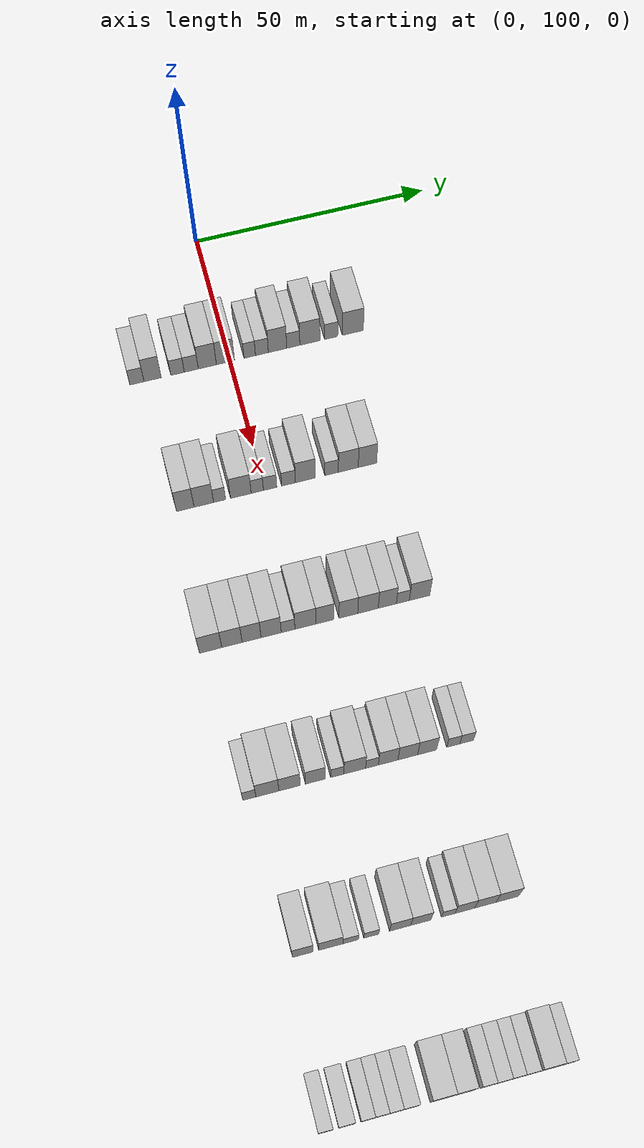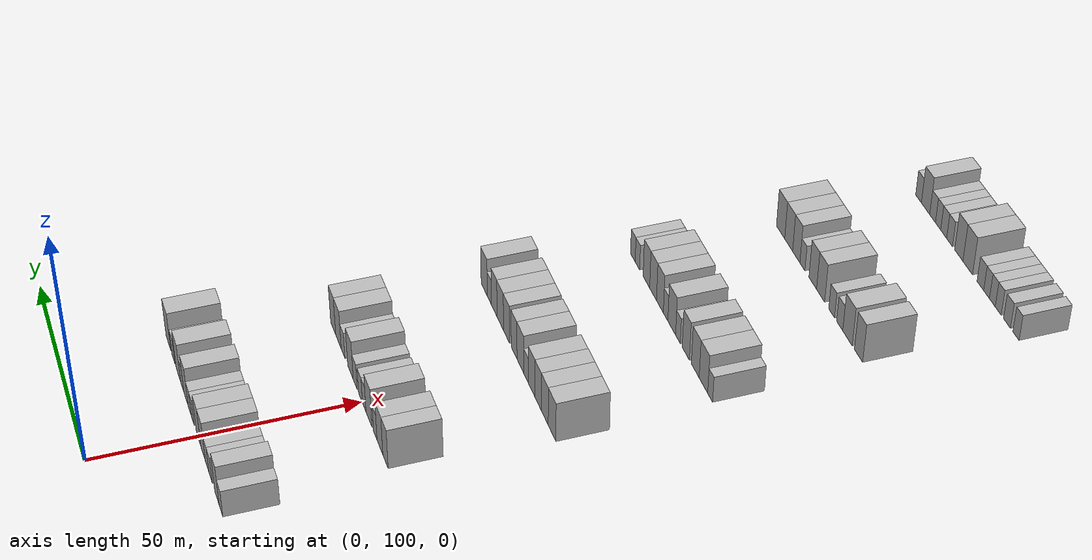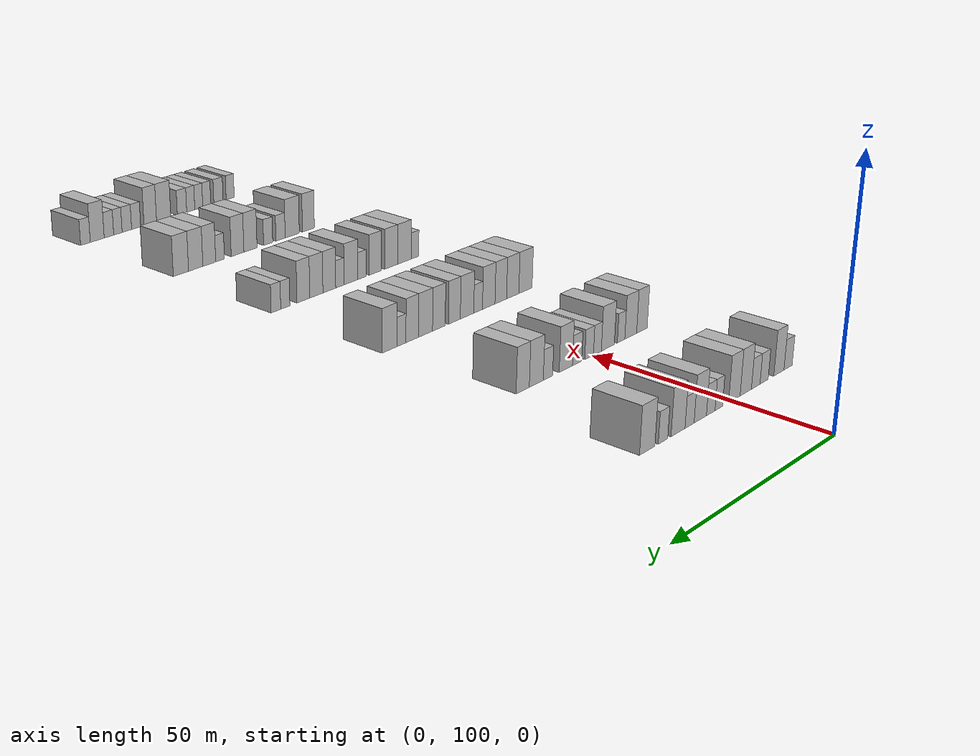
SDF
<sdf version="1.6">
 <world name="default">
  <model name="building_132">
   <static>1</static>
   <pose>25.0000 80.4312 0 0.000000 0.000000 0.000000</pose>
   <link name="link">
    <pose>0 0 3.00 0 0 0</pose>
    <collision name="collision"><geometry><box><size>10.0000 2.9706 6.0000</size></box></geometry></collision>
    <visual name="visual">
     <cast_shadows>0</cast_shadows>
     <geometry><box><size>10.0000 2.9706 6.0000</size></box></geometry>
     <material>
      <script>
       <uri>model://HANNAS_wall/materials/scripts</uri>
       <uri>model://HANNAS_wall/materials/textures</uri>
       <name>vrc/HANNAS_wall</name>
      </script>
     </material>
    </visual>
   </link>
  </model>
  <model name="building_133">
   <static>1</static>
   <pose>25.0000 83.7297 0 0.000000 0.000000 0.000000</pose>
   <link name="link">
    <pose>0 0 4.50 0 0 0</pose>
    <collision name="collision"><geometry><box><size>10.0000 3.6263 9.0000</size></box></geometry></collision>
    <visual name="visual">
     <cast_shadows>0</cast_shadows>
     <geometry><box><size>10.0000 3.6263 9.0000</size></box></geometry>
     <material>
      <script>
       <uri>model://HANNAS_wall/materials/scripts</uri>
       <uri>model://HANNAS_wall/materials/textures</uri>
       <name>vrc/HANNAS_wall</name>
      </script>
     </material>
    </visual>
   </link>
  </model>
  <model name="building_134">
   <static>1</static>
   <pose>25.0000 88.9687 0 0.000000 0.000000 0.000000</pose>
   <link name="link">
    <pose>0 0 3.00 0 0 0</pose>
    <collision name="collision"><geometry><box><size>10.0000 2.8517 6.0000</size></box></geometry></collision>
    <visual name="visual">
     <cast_shadows>0</cast_shadows>
     <geometry><box><size>10.0000 2.8517 6.0000</size></box></geometry>
     <material>
      <script>
       <uri>model://HANNAS_wall/materials/scripts</uri>
       <uri>model://HANNAS_wall/materials/textures</uri>
       <name>vrc/HANNAS_wall</name>
      </script>
     </material>
    </visual>
   </link>
  </model>
  <model name="building_135">
   <static>1</static>
   <pose>25.0000 91.8757 0 0.000000 0.000000 0.000000</pose>
   <link name="link">
    <pose>0 0 3.00 0 0 0</pose>
    <collision name="collision"><geometry><box><size>10.0000 2.9624 6.0000</size></box></geometry></collision>
    <visual name="visual">
     <cast_shadows>0</cast_shadows>
     <geometry><box><size>10.0000 2.9624 6.0000</size></box></geometry>
     <material>
      <script>
       <uri>model://HANNAS_wall/materials/scripts</uri>
       <uri>model://HANNAS_wall/materials/textures</uri>
       <name>vrc/HANNAS_wall</name>
      </script>
     </material>
    </visual>
   </link>
  </model>
  <model name="building_136">
   <static>1</static>
   <pose>25.0000 95.2768 0 0.000000 0.000000 0.000000</pose>
   <link name="link">
    <pose>0 0 4.50 0 0 0</pose>
    <collision name="collision"><geometry><box><size>10.0000 3.8398 9.0000</size></box></geometry></collision>
    <visual name="visual">
     <cast_shadows>0</cast_shadows>
     <geometry><box><size>10.0000 3.8398 9.0000</size></box></geometry>
     <material>
      <script>
       <uri>model://HANNAS_wall/materials/scripts</uri>
       <uri>model://HANNAS_wall/materials/textures</uri>
       <name>vrc/HANNAS_wall</name>
      </script>
     </material>
    </visual>
   </link>
  </model>
  <model name="building_137">
   <static>1</static>
   <pose>25.0000 99.1187 0 0.000000 0.000000 0.000000</pose>
   <link name="link">
    <pose>0 0 4.50 0 0 0</pose>
    <collision name="collision"><geometry><box><size>10.0000 3.8441 9.0000</size></box></geometry></collision>
    <visual name="visual">
     <cast_shadows>0</cast_shadows>
     <geometry><box><size>10.0000 3.8441 9.0000</size></box></geometry>
     <material>
      <script>
       <uri>model://HANNAS_wall/materials/scripts</uri>
       <uri>model://HANNAS_wall/materials/textures</uri>
       <name>vrc/HANNAS_wall</name>
      </script>
     </material>
    </visual>
   </link>
  </model>
  <model name="building_138">
   <static>1</static>
   <pose>25.0000 104.2599 0 0.000000 0.000000 0.000000</pose>
   <link name="link">
    <pose>0 0 3.00 0 0 0</pose>
    <collision name="collision"><geometry><box><size>10.0000 2.4383 6.0000</size></box></geometry></collision>
    <visual name="visual">
     <cast_shadows>0</cast_shadows>
     <geometry><box><size>10.0000 2.4383 6.0000</size></box></geometry>
     <material>
      <script>
       <uri>model://HANNAS_wall/materials/scripts</uri>
       <uri>model://HANNAS_wall/materials/textures</uri>
       <name>vrc/HANNAS_wall</name>
      </script>
     </material>
    </visual>
   </link>
  </model>
  <model name="building_139">
   <static>1</static>
   <pose>25.0000 106.8576 0 0.000000 0.000000 0.000000</pose>
   <link name="link">
    <pose>0 0 3.00 0 0 0</pose>
    <collision name="collision"><geometry><box><size>10.0000 2.7573 6.0000</size></box></geometry></collision>
    <visual name="visual">
     <cast_shadows>0</cast_shadows>
     <geometry><box><size>10.0000 2.7573 6.0000</size></box></geometry>
     <material>
      <script>
       <uri>model://HANNAS_wall/materials/scripts</uri>
       <uri>model://HANNAS_wall/materials/textures</uri>
       <name>vrc/HANNAS_wall</name>
      </script>
     </material>
    </visual>
   </link>
  </model>
  <model name="building_140">
   <static>1</static>
   <pose>25.0000 110.1874 0 0.000000 0.000000 0.000000</pose>
   <link name="link">
    <pose>0 0 4.50 0 0 0</pose>
    <collision name="collision"><geometry><box><size>10.0000 3.9023 9.0000</size></box></geometry></collision>
    <visual name="visual">
     <cast_shadows>0</cast_shadows>
     <geometry><box><size>10.0000 3.9023 9.0000</size></box></geometry>
     <material>
      <script>
       <uri>model://HANNAS_wall/materials/scripts</uri>
       <uri>model://HANNAS_wall/materials/textures</uri>
       <name>vrc/HANNAS_wall</name>
      </script>
     </material>
    </visual>
   </link>
  </model>
  <model name="building_141">
   <static>1</static>
   <pose>25.0000 113.5508 0 0.000000 0.000000 0.000000</pose>
   <link name="link">
    <pose>0 0 3.00 0 0 0</pose>
    <collision name="collision"><geometry><box><size>10.0000 2.8245 6.0000</size></box></geometry></collision>
    <visual name="visual">
     <cast_shadows>0</cast_shadows>
     <geometry><box><size>10.0000 2.8245 6.0000</size></box></geometry>
     <material>
      <script>
       <uri>model://HANNAS_wall/materials/scripts</uri>
       <uri>model://HANNAS_wall/materials/textures</uri>
       <name>vrc/HANNAS_wall</name>
      </script>
     </material>
    </visual>
   </link>
  </model>
  <model name="building_142">
   <static>1</static>
   <pose>25.0000 117.1089 0 0.000000 0.000000 0.000000</pose>
   <link name="link">
    <pose>0 0 4.50 0 0 0</pose>
    <collision name="collision"><geometry><box><size>10.0000 4.2918 9.0000</size></box></geometry></collision>
    <visual name="visual">
     <cast_shadows>0</cast_shadows>
     <geometry><box><size>10.0000 4.2918 9.0000</size></box></geometry>
     <material>
      <script>
       <uri>model://HANNAS_wall/materials/scripts</uri>
       <uri>model://HANNAS_wall/materials/textures</uri>
       <name>vrc/HANNAS_wall</name>
      </script>
     </material>
    </visual>
   </link>
  </model>
  <model name="building_143">
   <static>1</static>
   <pose>25.0000 121.6688 0 0.000000 0.000000 0.000000</pose>
   <link name="link">
    <pose>0 0 3.00 0 0 0</pose>
    <collision name="collision"><geometry><box><size>10.0000 2.8280 6.0000</size></box></geometry></collision>
    <visual name="visual">
     <cast_shadows>0</cast_shadows>
     <geometry><box><size>10.0000 2.8280 6.0000</size></box></geometry>
     <material>
      <script>
       <uri>model://HANNAS_wall/materials/scripts</uri>
       <uri>model://HANNAS_wall/materials/textures</uri>
       <name>vrc/HANNAS_wall</name>
      </script>
     </material>
    </visual>
   </link>
  </model>
  <model name="building_144">
   <static>1</static>
   <pose>25.0000 126.3300 0 0.000000 0.000000 0.000000</pose>
   <link name="link">
    <pose>0 0 4.50 0 0 0</pose>
    <collision name="collision"><geometry><box><size>10.0000 4.4942 9.0000</size></box></geometry></collision>
    <visual name="visual">
     <cast_shadows>0</cast_shadows>
     <geometry><box><size>10.0000 4.4942 9.0000</size></box></geometry>
     <material>
      <script>
       <uri>model://HANNAS_wall/materials/scripts</uri>
       <uri>model://HANNAS_wall/materials/textures</uri>
       <name>vrc/HANNAS_wall</name>
      </script>
     </material>
    </visual>
   </link>
  </model>
  <model name="building_361">
   <static>1</static>
   <pose>55.0000 83.6692 0 0.000000 0.000000 0.000000</pose>
   <link name="link">
    <pose>0 0 4.50 0 0 0</pose>
    <collision name="collision"><geometry><box><size>10.0000 3.6017 9.0000</size></box></geometry></collision>
    <visual name="visual">
     <cast_shadows>0</cast_shadows>
     <geometry><box><size>10.0000 3.6017 9.0000</size></box></geometry>
     <material>
      <script>
       <uri>model://HANNAS_wall/materials/scripts</uri>
       <uri>model://HANNAS_wall/materials/textures</uri>
       <name>vrc/HANNAS_wall</name>
      </script>
     </material>
    </visual>
   </link>
  </model>
  <model name="building_362">
   <static>1</static>
   <pose>55.0000 87.4626 0 0.000000 0.000000 0.000000</pose>
   <link name="link">
    <pose>0 0 4.50 0 0 0</pose>
    <collision name="collision"><geometry><box><size>10.0000 3.9851 9.0000</size></box></geometry></collision>
    <visual name="visual">
     <cast_shadows>0</cast_shadows>
     <geometry><box><size>10.0000 3.9851 9.0000</size></box></geometry>
     <material>
      <script>
       <uri>model://HANNAS_wall/materials/scripts</uri>
       <uri>model://HANNAS_wall/materials/textures</uri>
       <name>vrc/HANNAS_wall</name>
      </script>
     </material>
    </visual>
   </link>
  </model>
  <model name="building_363">
   <static>1</static>
   <pose>55.0000 90.6840 0 0.000000 0.000000 0.000000</pose>
   <link name="link">
    <pose>0 0 3.00 0 0 0</pose>
    <collision name="collision"><geometry><box><size>10.0000 2.4578 6.0000</size></box></geometry></collision>
    <visual name="visual">
     <cast_shadows>0</cast_shadows>
     <geometry><box><size>10.0000 2.4578 6.0000</size></box></geometry>
     <material>
      <script>
       <uri>model://HANNAS_wall/materials/scripts</uri>
       <uri>model://HANNAS_wall/materials/textures</uri>
       <name>vrc/HANNAS_wall</name>
      </script>
     </material>
    </visual>
   </link>
  </model>
  <model name="building_364">
   <static>1</static>
   <pose>55.0000 95.0373 0 0.000000 0.000000 0.000000</pose>
   <link name="link">
    <pose>0 0 4.50 0 0 0</pose>
    <collision name="collision"><geometry><box><size>10.0000 4.2488 9.0000</size></box></geometry></collision>
    <visual name="visual">
     <cast_shadows>0</cast_shadows>
     <geometry><box><size>10.0000 4.2488 9.0000</size></box></geometry>
     <material>
      <script>
       <uri>model://HANNAS_wall/materials/scripts</uri>
       <uri>model://HANNAS_wall/materials/textures</uri>
       <name>vrc/HANNAS_wall</name>
      </script>
     </material>
    </visual>
   </link>
  </model>
  <model name="building_365">
   <static>1</static>
   <pose>55.0000 98.4216 0 0.000000 0.000000 0.000000</pose>
   <link name="link">
    <pose>0 0 3.00 0 0 0</pose>
    <collision name="collision"><geometry><box><size>10.0000 2.5198 6.0000</size></box></geometry></collision>
    <visual name="visual">
     <cast_shadows>0</cast_shadows>
     <geometry><box><size>10.0000 2.5198 6.0000</size></box></geometry>
     <material>
      <script>
       <uri>model://HANNAS_wall/materials/scripts</uri>
       <uri>model://HANNAS_wall/materials/textures</uri>
       <name>vrc/HANNAS_wall</name>
      </script>
     </material>
    </visual>
   </link>
  </model>
  <model name="building_366">
   <static>1</static>
   <pose>55.0000 101.0562 0 0.000000 0.000000 0.000000</pose>
   <link name="link">
    <pose>0 0 3.00 0 0 0</pose>
    <collision name="collision"><geometry><box><size>10.0000 2.7495 6.0000</size></box></geometry></collision>
    <visual name="visual">
     <cast_shadows>0</cast_shadows>
     <geometry><box><size>10.0000 2.7495 6.0000</size></box></geometry>
     <material>
      <script>
       <uri>model://HANNAS_wall/materials/scripts</uri>
       <uri>model://HANNAS_wall/materials/textures</uri>
       <name>vrc/HANNAS_wall</name>
      </script>
     </material>
    </visual>
   </link>
  </model>
  <model name="building_367">
   <static>1</static>
   <pose>55.0000 104.8557 0 0.000000 0.000000 0.000000</pose>
   <link name="link">
    <pose>0 0 3.00 0 0 0</pose>
    <collision name="collision"><geometry><box><size>10.0000 2.8495 6.0000</size></box></geometry></collision>
    <visual name="visual">
     <cast_shadows>0</cast_shadows>
     <geometry><box><size>10.0000 2.8495 6.0000</size></box></geometry>
     <material>
      <script>
       <uri>model://HANNAS_wall/materials/scripts</uri>
       <uri>model://HANNAS_wall/materials/textures</uri>
       <name>vrc/HANNAS_wall</name>
      </script>
     </material>
    </visual>
   </link>
  </model>
  <model name="building_368">
   <static>1</static>
   <pose>55.0000 108.3212 0 0.000000 0.000000 0.000000</pose>
   <link name="link">
    <pose>0 0 4.50 0 0 0</pose>
    <collision name="collision"><geometry><box><size>10.0000 4.0814 9.0000</size></box></geometry></collision>
    <visual name="visual">
     <cast_shadows>0</cast_shadows>
     <geometry><box><size>10.0000 4.0814 9.0000</size></box></geometry>
     <material>
      <script>
       <uri>model://HANNAS_wall/materials/scripts</uri>
       <uri>model://HANNAS_wall/materials/textures</uri>
       <name>vrc/HANNAS_wall</name>
      </script>
     </material>
    </visual>
   </link>
  </model>
  <model name="building_369">
   <static>1</static>
   <pose>55.0000 113.7591 0 0.000000 0.000000 0.000000</pose>
   <link name="link">
    <pose>0 0 3.00 0 0 0</pose>
    <collision name="collision"><geometry><box><size>10.0000 2.7943 6.0000</size></box></geometry></collision>
    <visual name="visual">
     <cast_shadows>0</cast_shadows>
     <geometry><box><size>10.0000 2.7943 6.0000</size></box></geometry>
     <material>
      <script>
       <uri>model://HANNAS_wall/materials/scripts</uri>
       <uri>model://HANNAS_wall/materials/textures</uri>
       <name>vrc/HANNAS_wall</name>
      </script>
     </material>
    </visual>
   </link>
  </model>
  <model name="building_370">
   <static>1</static>
   <pose>55.0000 117.2240 0 0.000000 0.000000 0.000000</pose>
   <link name="link">
    <pose>0 0 4.50 0 0 0</pose>
    <collision name="collision"><geometry><box><size>10.0000 4.1356 9.0000</size></box></geometry></collision>
    <visual name="visual">
     <cast_shadows>0</cast_shadows>
     <geometry><box><size>10.0000 4.1356 9.0000</size></box></geometry>
     <material>
      <script>
       <uri>model://HANNAS_wall/materials/scripts</uri>
       <uri>model://HANNAS_wall/materials/textures</uri>
       <name>vrc/HANNAS_wall</name>
      </script>
     </material>
    </visual>
   </link>
  </model>
  <model name="building_371">
   <static>1</static>
   <pose>55.0000 121.1991 0 0.000000 0.000000 0.000000</pose>
   <link name="link">
    <pose>0 0 4.50 0 0 0</pose>
    <collision name="collision"><geometry><box><size>10.0000 3.8147 9.0000</size></box></geometry></collision>
    <visual name="visual">
     <cast_shadows>0</cast_shadows>
     <geometry><box><size>10.0000 3.8147 9.0000</size></box></geometry>
     <material>
      <script>
       <uri>model://HANNAS_wall/materials/scripts</uri>
       <uri>model://HANNAS_wall/materials/textures</uri>
       <name>vrc/HANNAS_wall</name>
      </script>
     </material>
    </visual>
   </link>
  </model>
  <model name="building_588">
   <static>1</static>
   <pose>85.0000 81.7219 0 0.000000 0.000000 0.000000</pose>
   <link name="link">
    <pose>0 0 4.50 0 0 0</pose>
    <collision name="collision"><geometry><box><size>10.0000 4.4273 9.0000</size></box></geometry></collision>
    <visual name="visual">
     <cast_shadows>0</cast_shadows>
     <geometry><box><size>10.0000 4.4273 9.0000</size></box></geometry>
     <material>
      <script>
       <uri>model://HANNAS_wall/materials/scripts</uri>
       <uri>model://HANNAS_wall/materials/textures</uri>
       <name>vrc/HANNAS_wall</name>
      </script>
     </material>
    </visual>
   </link>
  </model>
  <model name="building_589">
   <static>1</static>
   <pose>85.0000 85.9548 0 0.000000 0.000000 0.000000</pose>
   <link name="link">
    <pose>0 0 4.50 0 0 0</pose>
    <collision name="collision"><geometry><box><size>10.0000 4.0385 9.0000</size></box></geometry></collision>
    <visual name="visual">
     <cast_shadows>0</cast_shadows>
     <geometry><box><size>10.0000 4.0385 9.0000</size></box></geometry>
     <material>
      <script>
       <uri>model://HANNAS_wall/materials/scripts</uri>
       <uri>model://HANNAS_wall/materials/textures</uri>
       <name>vrc/HANNAS_wall</name>
      </script>
     </material>
    </visual>
   </link>
  </model>
  <model name="building_590">
   <static>1</static>
   <pose>85.0000 89.8477 0 0.000000 0.000000 0.000000</pose>
   <link name="link">
    <pose>0 0 4.50 0 0 0</pose>
    <collision name="collision"><geometry><box><size>10.0000 3.7474 9.0000</size></box></geometry></collision>
    <visual name="visual">
     <cast_shadows>0</cast_shadows>
     <geometry><box><size>10.0000 3.7474 9.0000</size></box></geometry>
     <material>
      <script>
       <uri>model://HANNAS_wall/materials/scripts</uri>
       <uri>model://HANNAS_wall/materials/textures</uri>
       <name>vrc/HANNAS_wall</name>
      </script>
     </material>
    </visual>
   </link>
  </model>
  <model name="building_591">
   <static>1</static>
   <pose>85.0000 93.7187 0 0.000000 0.000000 0.000000</pose>
   <link name="link">
    <pose>0 0 4.50 0 0 0</pose>
    <collision name="collision"><geometry><box><size>10.0000 3.9947 9.0000</size></box></geometry></collision>
    <visual name="visual">
     <cast_shadows>0</cast_shadows>
     <geometry><box><size>10.0000 3.9947 9.0000</size></box></geometry>
     <material>
      <script>
       <uri>model://HANNAS_wall/materials/scripts</uri>
       <uri>model://HANNAS_wall/materials/textures</uri>
       <name>vrc/HANNAS_wall</name>
      </script>
     </material>
    </visual>
   </link>
  </model>
  <model name="building_592">
   <static>1</static>
   <pose>85.0000 97.0842 0 0.000000 0.000000 0.000000</pose>
   <link name="link">
    <pose>0 0 3.00 0 0 0</pose>
    <collision name="collision"><geometry><box><size>10.0000 2.7363 6.0000</size></box></geometry></collision>
    <visual name="visual">
     <cast_shadows>0</cast_shadows>
     <geometry><box><size>10.0000 2.7363 6.0000</size></box></geometry>
     <material>
      <script>
       <uri>model://HANNAS_wall/materials/scripts</uri>
       <uri>model://HANNAS_wall/materials/textures</uri>
       <name>vrc/HANNAS_wall</name>
      </script>
     </material>
    </visual>
   </link>
  </model>
  <model name="building_593">
   <static>1</static>
   <pose>85.0000 100.5328 0 0.000000 0.000000 0.000000</pose>
   <link name="link">
    <pose>0 0 4.50 0 0 0</pose>
    <collision name="collision"><geometry><box><size>10.0000 4.1608 9.0000</size></box></geometry></collision>
    <visual name="visual">
     <cast_shadows>0</cast_shadows>
     <geometry><box><size>10.0000 4.1608 9.0000</size></box></geometry>
     <material>
      <script>
       <uri>model://HANNAS_wall/materials/scripts</uri>
       <uri>model://HANNAS_wall/materials/textures</uri>
       <name>vrc/HANNAS_wall</name>
      </script>
     </material>
    </visual>
   </link>
  </model>
  <model name="building_594">
   <static>1</static>
   <pose>85.0000 104.4222 0 0.000000 0.000000 0.000000</pose>
   <link name="link">
    <pose>0 0 4.50 0 0 0</pose>
    <collision name="collision"><geometry><box><size>10.0000 3.6181 9.0000</size></box></geometry></collision>
    <visual name="visual">
     <cast_shadows>0</cast_shadows>
     <geometry><box><size>10.0000 3.6181 9.0000</size></box></geometry>
     <material>
      <script>
       <uri>model://HANNAS_wall/materials/scripts</uri>
       <uri>model://HANNAS_wall/materials/textures</uri>
       <name>vrc/HANNAS_wall</name>
      </script>
     </material>
    </visual>
   </link>
  </model>
  <model name="building_595">
   <static>1</static>
   <pose>85.0000 109.1211 0 0.000000 0.000000 0.000000</pose>
   <link name="link">
    <pose>0 0 4.50 0 0 0</pose>
    <collision name="collision"><geometry><box><size>10.0000 3.7796 9.0000</size></box></geometry></collision>
    <visual name="visual">
     <cast_shadows>0</cast_shadows>
     <geometry><box><size>10.0000 3.7796 9.0000</size></box></geometry>
     <material>
      <script>
       <uri>model://HANNAS_wall/materials/scripts</uri>
       <uri>model://HANNAS_wall/materials/textures</uri>
       <name>vrc/HANNAS_wall</name>
      </script>
     </material>
    </visual>
   </link>
  </model>
  <model name="building_596">
   <static>1</static>
   <pose>85.0000 113.0689 0 0.000000 0.000000 0.000000</pose>
   <link name="link">
    <pose>0 0 4.50 0 0 0</pose>
    <collision name="collision"><geometry><box><size>10.0000 4.1160 9.0000</size></box></geometry></collision>
    <visual name="visual">
     <cast_shadows>0</cast_shadows>
     <geometry><box><size>10.0000 4.1160 9.0000</size></box></geometry>
     <material>
      <script>
       <uri>model://HANNAS_wall/materials/scripts</uri>
       <uri>model://HANNAS_wall/materials/textures</uri>
       <name>vrc/HANNAS_wall</name>
      </script>
     </material>
    </visual>
   </link>
  </model>
  <model name="building_597">
   <static>1</static>
   <pose>85.0000 116.9531 0 0.000000 0.000000 0.000000</pose>
   <link name="link">
    <pose>0 0 4.50 0 0 0</pose>
    <collision name="collision"><geometry><box><size>10.0000 3.6525 9.0000</size></box></geometry></collision>
    <visual name="visual">
     <cast_shadows>0</cast_shadows>
     <geometry><box><size>10.0000 3.6525 9.0000</size></box></geometry>
     <material>
      <script>
       <uri>model://HANNAS_wall/materials/scripts</uri>
       <uri>model://HANNAS_wall/materials/textures</uri>
       <name>vrc/HANNAS_wall</name>
      </script>
     </material>
    </visual>
   </link>
  </model>
  <model name="building_598">
   <static>1</static>
   <pose>85.0000 120.0912 0 0.000000 0.000000 0.000000</pose>
   <link name="link">
    <pose>0 0 3.00 0 0 0</pose>
    <collision name="collision"><geometry><box><size>10.0000 2.6236 6.0000</size></box></geometry></collision>
    <visual name="visual">
     <cast_shadows>0</cast_shadows>
     <geometry><box><size>10.0000 2.6236 6.0000</size></box></geometry>
     <material>
      <script>
       <uri>model://HANNAS_wall/materials/scripts</uri>
       <uri>model://HANNAS_wall/materials/textures</uri>
       <name>vrc/HANNAS_wall</name>
      </script>
     </material>
    </visual>
   </link>
  </model>
  <model name="building_599">
   <static>1</static>
   <pose>85.0000 123.4636 0 0.000000 0.000000 0.000000</pose>
   <link name="link">
    <pose>0 0 4.50 0 0 0</pose>
    <collision name="collision"><geometry><box><size>10.0000 4.1213 9.0000</size></box></geometry></collision>
    <visual name="visual">
     <cast_shadows>0</cast_shadows>
     <geometry><box><size>10.0000 4.1213 9.0000</size></box></geometry>
     <material>
      <script>
       <uri>model://HANNAS_wall/materials/scripts</uri>
       <uri>model://HANNAS_wall/materials/textures</uri>
       <name>vrc/HANNAS_wall</name>
      </script>
     </material>
    </visual>
   </link>
  </model>
  <model name="building_821">
   <static>1</static>
   <pose>115.0000 81.9940 0 0.000000 0.000000 0.000000</pose>
   <link name="link">
    <pose>0 0 3.00 0 0 0</pose>
    <collision name="collision"><geometry><box><size>10.0000 2.5083 6.0000</size></box></geometry></collision>
    <visual name="visual">
     <cast_shadows>0</cast_shadows>
     <geometry><box><size>10.0000 2.5083 6.0000</size></box></geometry>
     <material>
      <script>
       <uri>model://HANNAS_wall/materials/scripts</uri>
       <uri>model://HANNAS_wall/materials/textures</uri>
       <name>vrc/HANNAS_wall</name>
      </script>
     </material>
    </visual>
   </link>
  </model>
  <model name="building_822">
   <static>1</static>
   <pose>115.0000 85.4517 0 0.000000 0.000000 0.000000</pose>
   <link name="link">
    <pose>0 0 4.50 0 0 0</pose>
    <collision name="collision"><geometry><box><size>10.0000 4.4071 9.0000</size></box></geometry></collision>
    <visual name="visual">
     <cast_shadows>0</cast_shadows>
     <geometry><box><size>10.0000 4.4071 9.0000</size></box></geometry>
     <material>
      <script>
       <uri>model://HANNAS_wall/materials/scripts</uri>
       <uri>model://HANNAS_wall/materials/textures</uri>
       <name>vrc/HANNAS_wall</name>
      </script>
     </material>
    </visual>
   </link>
  </model>
  <model name="building_823">
   <static>1</static>
   <pose>115.0000 89.6960 0 0.000000 0.000000 0.000000</pose>
   <link name="link">
    <pose>0 0 4.50 0 0 0</pose>
    <collision name="collision"><geometry><box><size>10.0000 4.0816 9.0000</size></box></geometry></collision>
    <visual name="visual">
     <cast_shadows>0</cast_shadows>
     <geometry><box><size>10.0000 4.0816 9.0000</size></box></geometry>
     <material>
      <script>
       <uri>model://HANNAS_wall/materials/scripts</uri>
       <uri>model://HANNAS_wall/materials/textures</uri>
       <name>vrc/HANNAS_wall</name>
      </script>
     </material>
    </visual>
   </link>
  </model>
  <model name="building_824">
   <static>1</static>
   <pose>115.0000 94.6588 0 0.000000 0.000000 0.000000</pose>
   <link name="link">
    <pose>0 0 4.50 0 0 0</pose>
    <collision name="collision"><geometry><box><size>10.0000 3.8440 9.0000</size></box></geometry></collision>
    <visual name="visual">
     <cast_shadows>0</cast_shadows>
     <geometry><box><size>10.0000 3.8440 9.0000</size></box></geometry>
     <material>
      <script>
       <uri>model://HANNAS_wall/materials/scripts</uri>
       <uri>model://HANNAS_wall/materials/textures</uri>
       <name>vrc/HANNAS_wall</name>
      </script>
     </material>
    </visual>
   </link>
  </model>
  <model name="building_825">
   <static>1</static>
   <pose>115.0000 98.8537 0 0.000000 0.000000 0.000000</pose>
   <link name="link">
    <pose>0 0 3.00 0 0 0</pose>
    <collision name="collision"><geometry><box><size>10.0000 2.5457 6.0000</size></box></geometry></collision>
    <visual name="visual">
     <cast_shadows>0</cast_shadows>
     <geometry><box><size>10.0000 2.5457 6.0000</size></box></geometry>
     <material>
      <script>
       <uri>model://HANNAS_wall/materials/scripts</uri>
       <uri>model://HANNAS_wall/materials/textures</uri>
       <name>vrc/HANNAS_wall</name>
      </script>
     </material>
    </visual>
   </link>
  </model>
  <model name="building_826">
   <static>1</static>
   <pose>115.0000 102.2245 0 0.000000 0.000000 0.000000</pose>
   <link name="link">
    <pose>0 0 4.50 0 0 0</pose>
    <collision name="collision"><geometry><box><size>10.0000 4.1959 9.0000</size></box></geometry></collision>
    <visual name="visual">
     <cast_shadows>0</cast_shadows>
     <geometry><box><size>10.0000 4.1959 9.0000</size></box></geometry>
     <material>
      <script>
       <uri>model://HANNAS_wall/materials/scripts</uri>
       <uri>model://HANNAS_wall/materials/textures</uri>
       <name>vrc/HANNAS_wall</name>
      </script>
     </material>
    </visual>
   </link>
  </model>
  <model name="building_827">
   <static>1</static>
   <pose>115.0000 105.5621 0 0.000000 0.000000 0.000000</pose>
   <link name="link">
    <pose>0 0 3.00 0 0 0</pose>
    <collision name="collision"><geometry><box><size>10.0000 2.4794 6.0000</size></box></geometry></collision>
    <visual name="visual">
     <cast_shadows>0</cast_shadows>
     <geometry><box><size>10.0000 2.4794 6.0000</size></box></geometry>
     <material>
      <script>
       <uri>model://HANNAS_wall/materials/scripts</uri>
       <uri>model://HANNAS_wall/materials/textures</uri>
       <name>vrc/HANNAS_wall</name>
      </script>
     </material>
    </visual>
   </link>
  </model>
  <model name="building_828">
   <static>1</static>
   <pose>115.0000 108.7014 0 0.000000 0.000000 0.000000</pose>
   <link name="link">
    <pose>0 0 4.50 0 0 0</pose>
    <collision name="collision"><geometry><box><size>10.0000 3.7992 9.0000</size></box></geometry></collision>
    <visual name="visual">
     <cast_shadows>0</cast_shadows>
     <geometry><box><size>10.0000 3.7992 9.0000</size></box></geometry>
     <material>
      <script>
       <uri>model://HANNAS_wall/materials/scripts</uri>
       <uri>model://HANNAS_wall/materials/textures</uri>
       <name>vrc/HANNAS_wall</name>
      </script>
     </material>
    </visual>
   </link>
  </model>
  <model name="building_829">
   <static>1</static>
   <pose>115.0000 112.5204 0 0.000000 0.000000 0.000000</pose>
   <link name="link">
    <pose>0 0 4.50 0 0 0</pose>
    <collision name="collision"><geometry><box><size>10.0000 3.8387 9.0000</size></box></geometry></collision>
    <visual name="visual">
     <cast_shadows>0</cast_shadows>
     <geometry><box><size>10.0000 3.8387 9.0000</size></box></geometry>
     <material>
      <script>
       <uri>model://HANNAS_wall/materials/scripts</uri>
       <uri>model://HANNAS_wall/materials/textures</uri>
       <name>vrc/HANNAS_wall</name>
      </script>
     </material>
    </visual>
   </link>
  </model>
  <model name="building_830">
   <static>1</static>
   <pose>115.0000 116.2843 0 0.000000 0.000000 0.000000</pose>
   <link name="link">
    <pose>0 0 4.50 0 0 0</pose>
    <collision name="collision"><geometry><box><size>10.0000 3.6892 9.0000</size></box></geometry></collision>
    <visual name="visual">
     <cast_shadows>0</cast_shadows>
     <geometry><box><size>10.0000 3.6892 9.0000</size></box></geometry>
     <material>
      <script>
       <uri>model://HANNAS_wall/materials/scripts</uri>
       <uri>model://HANNAS_wall/materials/textures</uri>
       <name>vrc/HANNAS_wall</name>
      </script>
     </material>
    </visual>
   </link>
  </model>
  <model name="building_831">
   <static>1</static>
   <pose>115.0000 121.4155 0 0.000000 0.000000 0.000000</pose>
   <link name="link">
    <pose>0 0 3.00 0 0 0</pose>
    <collision name="collision"><geometry><box><size>10.0000 2.5732 6.0000</size></box></geometry></collision>
    <visual name="visual">
     <cast_shadows>0</cast_shadows>
     <geometry><box><size>10.0000 2.5732 6.0000</size></box></geometry>
     <material>
      <script>
       <uri>model://HANNAS_wall/materials/scripts</uri>
       <uri>model://HANNAS_wall/materials/textures</uri>
       <name>vrc/HANNAS_wall</name>
      </script>
     </material>
    </visual>
   </link>
  </model>
  <model name="building_832">
   <static>1</static>
   <pose>115.0000 124.0376 0 0.000000 0.000000 0.000000</pose>
   <link name="link">
    <pose>0 0 3.00 0 0 0</pose>
    <collision name="collision"><geometry><box><size>10.0000 2.6711 6.0000</size></box></geometry></collision>
    <visual name="visual">
     <cast_shadows>0</cast_shadows>
     <geometry><box><size>10.0000 2.6711 6.0000</size></box></geometry>
     <material>
      <script>
       <uri>model://HANNAS_wall/materials/scripts</uri>
       <uri>model://HANNAS_wall/materials/textures</uri>
       <name>vrc/HANNAS_wall</name>
      </script>
     </material>
    </visual>
   </link>
  </model>
  <model name="building_1049">
   <static>1</static>
   <pose>145.0000 84.4590 0 0.000000 0.000000 0.000000</pose>
   <link name="link">
    <pose>0 0 4.50 0 0 0</pose>
    <collision name="collision"><geometry><box><size>10.0000 3.8386 9.0000</size></box></geometry></collision>
    <visual name="visual">
     <cast_shadows>0</cast_shadows>
     <geometry><box><size>10.0000 3.8386 9.0000</size></box></geometry>
     <material>
      <script>
       <uri>model://HANNAS_wall/materials/scripts</uri>
       <uri>model://HANNAS_wall/materials/textures</uri>
       <name>vrc/HANNAS_wall</name>
      </script>
     </material>
    </visual>
   </link>
  </model>
  <model name="building_1050">
   <static>1</static>
   <pose>145.0000 89.6160 0 0.000000 0.000000 0.000000</pose>
   <link name="link">
    <pose>0 0 4.50 0 0 0</pose>
    <collision name="collision"><geometry><box><size>10.0000 4.4755 9.0000</size></box></geometry></collision>
    <visual name="visual">
     <cast_shadows>0</cast_shadows>
     <geometry><box><size>10.0000 4.4755 9.0000</size></box></geometry>
     <material>
      <script>
       <uri>model://HANNAS_wall/materials/scripts</uri>
       <uri>model://HANNAS_wall/materials/textures</uri>
       <name>vrc/HANNAS_wall</name>
      </script>
     </material>
    </visual>
   </link>
  </model>
  <model name="building_1051">
   <static>1</static>
   <pose>145.0000 93.3003 0 0.000000 0.000000 0.000000</pose>
   <link name="link">
    <pose>0 0 3.00 0 0 0</pose>
    <collision name="collision"><geometry><box><size>10.0000 2.8930 6.0000</size></box></geometry></collision>
    <visual name="visual">
     <cast_shadows>0</cast_shadows>
     <geometry><box><size>10.0000 2.8930 6.0000</size></box></geometry>
     <material>
      <script>
       <uri>model://HANNAS_wall/materials/scripts</uri>
       <uri>model://HANNAS_wall/materials/textures</uri>
       <name>vrc/HANNAS_wall</name>
      </script>
     </material>
    </visual>
   </link>
  </model>
  <model name="building_1052">
   <static>1</static>
   <pose>145.0000 97.1467 0 0.000000 0.000000 0.000000</pose>
   <link name="link">
    <pose>0 0 3.00 0 0 0</pose>
    <collision name="collision"><geometry><box><size>10.0000 2.8000 6.0000</size></box></geometry></collision>
    <visual name="visual">
     <cast_shadows>0</cast_shadows>
     <geometry><box><size>10.0000 2.8000 6.0000</size></box></geometry>
     <material>
      <script>
       <uri>model://HANNAS_wall/materials/scripts</uri>
       <uri>model://HANNAS_wall/materials/textures</uri>
       <name>vrc/HANNAS_wall</name>
      </script>
     </material>
    </visual>
   </link>
  </model>
  <model name="building_1053">
   <static>1</static>
   <pose>145.0000 102.5264 0 0.000000 0.000000 0.000000</pose>
   <link name="link">
    <pose>0 0 4.50 0 0 0</pose>
    <collision name="collision"><geometry><box><size>10.0000 3.9594 9.0000</size></box></geometry></collision>
    <visual name="visual">
     <cast_shadows>0</cast_shadows>
     <geometry><box><size>10.0000 3.9594 9.0000</size></box></geometry>
     <material>
      <script>
       <uri>model://HANNAS_wall/materials/scripts</uri>
       <uri>model://HANNAS_wall/materials/textures</uri>
       <name>vrc/HANNAS_wall</name>
      </script>
     </material>
    </visual>
   </link>
  </model>
  <model name="building_1054">
   <static>1</static>
   <pose>145.0000 106.3943 0 0.000000 0.000000 0.000000</pose>
   <link name="link">
    <pose>0 0 4.50 0 0 0</pose>
    <collision name="collision"><geometry><box><size>10.0000 3.7763 9.0000</size></box></geometry></collision>
    <visual name="visual">
     <cast_shadows>0</cast_shadows>
     <geometry><box><size>10.0000 3.7763 9.0000</size></box></geometry>
     <material>
      <script>
       <uri>model://HANNAS_wall/materials/scripts</uri>
       <uri>model://HANNAS_wall/materials/textures</uri>
       <name>vrc/HANNAS_wall</name>
      </script>
     </material>
    </visual>
   </link>
  </model>
  <model name="building_1055">
   <static>1</static>
   <pose>145.0000 111.5528 0 0.000000 0.000000 0.000000</pose>
   <link name="link">
    <pose>0 0 3.00 0 0 0</pose>
    <collision name="collision"><geometry><box><size>10.0000 2.5408 6.0000</size></box></geometry></collision>
    <visual name="visual">
     <cast_shadows>0</cast_shadows>
     <geometry><box><size>10.0000 2.5408 6.0000</size></box></geometry>
     <material>
      <script>
       <uri>model://HANNAS_wall/materials/scripts</uri>
       <uri>model://HANNAS_wall/materials/textures</uri>
       <name>vrc/HANNAS_wall</name>
      </script>
     </material>
    </visual>
   </link>
  </model>
  <model name="building_1056">
   <static>1</static>
   <pose>145.0000 114.6689 0 0.000000 0.000000 0.000000</pose>
   <link name="link">
    <pose>0 0 4.50 0 0 0</pose>
    <collision name="collision"><geometry><box><size>10.0000 3.6914 9.0000</size></box></geometry></collision>
    <visual name="visual">
     <cast_shadows>0</cast_shadows>
     <geometry><box><size>10.0000 3.6914 9.0000</size></box></geometry>
     <material>
      <script>
       <uri>model://HANNAS_wall/materials/scripts</uri>
       <uri>model://HANNAS_wall/materials/textures</uri>
       <name>vrc/HANNAS_wall</name>
      </script>
     </material>
    </visual>
   </link>
  </model>
  <model name="building_1057">
   <static>1</static>
   <pose>145.0000 118.5494 0 0.000000 0.000000 0.000000</pose>
   <link name="link">
    <pose>0 0 4.50 0 0 0</pose>
    <collision name="collision"><geometry><box><size>10.0000 4.0696 9.0000</size></box></geometry></collision>
    <visual name="visual">
     <cast_shadows>0</cast_shadows>
     <geometry><box><size>10.0000 4.0696 9.0000</size></box></geometry>
     <material>
      <script>
       <uri>model://HANNAS_wall/materials/scripts</uri>
       <uri>model://HANNAS_wall/materials/textures</uri>
       <name>vrc/HANNAS_wall</name>
      </script>
     </material>
    </visual>
   </link>
  </model>
  <model name="building_1058">
   <static>1</static>
   <pose>145.0000 122.7212 0 0.000000 0.000000 0.000000</pose>
   <link name="link">
    <pose>0 0 4.50 0 0 0</pose>
    <collision name="collision"><geometry><box><size>10.0000 4.2741 9.0000</size></box></geometry></collision>
    <visual name="visual">
     <cast_shadows>0</cast_shadows>
     <geometry><box><size>10.0000 4.2741 9.0000</size></box></geometry>
     <material>
      <script>
       <uri>model://HANNAS_wall/materials/scripts</uri>
       <uri>model://HANNAS_wall/materials/textures</uri>
       <name>vrc/HANNAS_wall</name>
      </script>
     </material>
    </visual>
   </link>
  </model>
  <model name="building_1273">
   <static>1</static>
   <pose>175.0000 80.7202 0 0.000000 0.000000 0.000000</pose>
   <link name="link">
    <pose>0 0 3.00 0 0 0</pose>
    <collision name="collision"><geometry><box><size>10.0000 2.6179 6.0000</size></box></geometry></collision>
    <visual name="visual">
     <cast_shadows>0</cast_shadows>
     <geometry><box><size>10.0000 2.6179 6.0000</size></box></geometry>
     <material>
      <script>
       <uri>model://HANNAS_wall/materials/scripts</uri>
       <uri>model://HANNAS_wall/materials/textures</uri>
       <name>vrc/HANNAS_wall</name>
      </script>
     </material>
    </visual>
   </link>
  </model>
  <model name="building_1274">
   <static>1</static>
   <pose>175.0000 84.5060 0 0.000000 0.000000 0.000000</pose>
   <link name="link">
    <pose>0 0 3.00 0 0 0</pose>
    <collision name="collision"><geometry><box><size>10.0000 2.9537 6.0000</size></box></geometry></collision>
    <visual name="visual">
     <cast_shadows>0</cast_shadows>
     <geometry><box><size>10.0000 2.9537 6.0000</size></box></geometry>
     <material>
      <script>
       <uri>model://HANNAS_wall/materials/scripts</uri>
       <uri>model://HANNAS_wall/materials/textures</uri>
       <name>vrc/HANNAS_wall</name>
      </script>
     </material>
    </visual>
   </link>
  </model>
  <model name="building_1275">
   <static>1</static>
   <pose>175.0000 88.2531 0 0.000000 0.000000 0.000000</pose>
   <link name="link">
    <pose>0 0 3.00 0 0 0</pose>
    <collision name="collision"><geometry><box><size>10.0000 2.5405 6.0000</size></box></geometry></collision>
    <visual name="visual">
     <cast_shadows>0</cast_shadows>
     <geometry><box><size>10.0000 2.5405 6.0000</size></box></geometry>
     <material>
      <script>
       <uri>model://HANNAS_wall/materials/scripts</uri>
       <uri>model://HANNAS_wall/materials/textures</uri>
       <name>vrc/HANNAS_wall</name>
      </script>
     </material>
    </visual>
   </link>
  </model>
  <model name="building_1276">
   <static>1</static>
   <pose>175.0000 90.7793 0 0.000000 0.000000 0.000000</pose>
   <link name="link">
    <pose>0 0 3.00 0 0 0</pose>
    <collision name="collision"><geometry><box><size>10.0000 2.5119 6.0000</size></box></geometry></collision>
    <visual name="visual">
     <cast_shadows>0</cast_shadows>
     <geometry><box><size>10.0000 2.5119 6.0000</size></box></geometry>
     <material>
      <script>
       <uri>model://HANNAS_wall/materials/scripts</uri>
       <uri>model://HANNAS_wall/materials/textures</uri>
       <name>vrc/HANNAS_wall</name>
      </script>
     </material>
    </visual>
   </link>
  </model>
  <model name="building_1277">
   <static>1</static>
   <pose>175.0000 93.2920 0 0.000000 0.000000 0.000000</pose>
   <link name="link">
    <pose>0 0 3.00 0 0 0</pose>
    <collision name="collision"><geometry><box><size>10.0000 2.5134 6.0000</size></box></geometry></collision>
    <visual name="visual">
     <cast_shadows>0</cast_shadows>
     <geometry><box><size>10.0000 2.5134 6.0000</size></box></geometry>
     <material>
      <script>
       <uri>model://HANNAS_wall/materials/scripts</uri>
       <uri>model://HANNAS_wall/materials/textures</uri>
       <name>vrc/HANNAS_wall</name>
      </script>
     </material>
    </visual>
   </link>
  </model>
  <model name="building_1278">
   <static>1</static>
   <pose>175.0000 95.9955 0 0.000000 0.000000 0.000000</pose>
   <link name="link">
    <pose>0 0 3.00 0 0 0</pose>
    <collision name="collision"><geometry><box><size>10.0000 2.8936 6.0000</size></box></geometry></collision>
    <visual name="visual">
     <cast_shadows>0</cast_shadows>
     <geometry><box><size>10.0000 2.8936 6.0000</size></box></geometry>
     <material>
      <script>
       <uri>model://HANNAS_wall/materials/scripts</uri>
       <uri>model://HANNAS_wall/materials/textures</uri>
       <name>vrc/HANNAS_wall</name>
      </script>
     </material>
    </visual>
   </link>
  </model>
  <model name="building_1279">
   <static>1</static>
   <pose>175.0000 101.5946 0 0.000000 0.000000 0.000000</pose>
   <link name="link">
    <pose>0 0 4.50 0 0 0</pose>
    <collision name="collision"><geometry><box><size>10.0000 4.3045 9.0000</size></box></geometry></collision>
    <visual name="visual">
     <cast_shadows>0</cast_shadows>
     <geometry><box><size>10.0000 4.3045 9.0000</size></box></geometry>
     <material>
      <script>
       <uri>model://HANNAS_wall/materials/scripts</uri>
       <uri>model://HANNAS_wall/materials/textures</uri>
       <name>vrc/HANNAS_wall</name>
      </script>
     </material>
    </visual>
   </link>
  </model>
  <model name="building_1280">
   <static>1</static>
   <pose>175.0000 105.6183 0 0.000000 0.000000 0.000000</pose>
   <link name="link">
    <pose>0 0 4.50 0 0 0</pose>
    <collision name="collision"><geometry><box><size>10.0000 3.7430 9.0000</size></box></geometry></collision>
    <visual name="visual">
     <cast_shadows>0</cast_shadows>
     <geometry><box><size>10.0000 3.7430 9.0000</size></box></geometry>
     <material>
      <script>
       <uri>model://HANNAS_wall/materials/scripts</uri>
       <uri>model://HANNAS_wall/materials/textures</uri>
       <name>vrc/HANNAS_wall</name>
      </script>
     </material>
    </visual>
   </link>
  </model>
  <model name="building_1281">
   <static>1</static>
   <pose>175.0000 109.8217 0 0.000000 0.000000 0.000000</pose>
   <link name="link">
    <pose>0 0 3.00 0 0 0</pose>
    <collision name="collision"><geometry><box><size>10.0000 2.6639 6.0000</size></box></geometry></collision>
    <visual name="visual">
     <cast_shadows>0</cast_shadows>
     <geometry><box><size>10.0000 2.6639 6.0000</size></box></geometry>
     <material>
      <script>
       <uri>model://HANNAS_wall/materials/scripts</uri>
       <uri>model://HANNAS_wall/materials/textures</uri>
       <name>vrc/HANNAS_wall</name>
      </script>
     </material>
    </visual>
   </link>
  </model>
  <model name="building_1282">
   <static>1</static>
   <pose>175.0000 112.5322 0 0.000000 0.000000 0.000000</pose>
   <link name="link">
    <pose>0 0 3.00 0 0 0</pose>
    <collision name="collision"><geometry><box><size>10.0000 2.7571 6.0000</size></box></geometry></collision>
    <visual name="visual">
     <cast_shadows>0</cast_shadows>
     <geometry><box><size>10.0000 2.7571 6.0000</size></box></geometry>
     <material>
      <script>
       <uri>model://HANNAS_wall/materials/scripts</uri>
       <uri>model://HANNAS_wall/materials/textures</uri>
       <name>vrc/HANNAS_wall</name>
      </script>
     </material>
    </visual>
   </link>
  </model>
  <model name="building_1283">
   <static>1</static>
   <pose>175.0000 115.1267 0 0.000000 0.000000 0.000000</pose>
   <link name="link">
    <pose>0 0 3.00 0 0 0</pose>
    <collision name="collision"><geometry><box><size>10.0000 2.4319 6.0000</size></box></geometry></collision>
    <visual name="visual">
     <cast_shadows>0</cast_shadows>
     <geometry><box><size>10.0000 2.4319 6.0000</size></box></geometry>
     <material>
      <script>
       <uri>model://HANNAS_wall/materials/scripts</uri>
       <uri>model://HANNAS_wall/materials/textures</uri>
       <name>vrc/HANNAS_wall</name>
      </script>
     </material>
    </visual>
   </link>
  </model>
  <model name="building_1284">
   <static>1</static>
   <pose>175.0000 117.6985 0 0.000000 0.000000 0.000000</pose>
   <link name="link">
    <pose>0 0 3.00 0 0 0</pose>
    <collision name="collision"><geometry><box><size>10.0000 2.7116 6.0000</size></box></geometry></collision>
    <visual name="visual">
     <cast_shadows>0</cast_shadows>
     <geometry><box><size>10.0000 2.7116 6.0000</size></box></geometry>
     <material>
      <script>
       <uri>model://HANNAS_wall/materials/scripts</uri>
       <uri>model://HANNAS_wall/materials/textures</uri>
       <name>vrc/HANNAS_wall</name>
      </script>
     </material>
    </visual>
   </link>
  </model>
  <model name="building_1285">
   <static>1</static>
   <pose>175.0000 121.0204 0 0.000000 0.000000 0.000000</pose>
   <link name="link">
    <pose>0 0 4.50 0 0 0</pose>
    <collision name="collision"><geometry><box><size>10.0000 3.9322 9.0000</size></box></geometry></collision>
    <visual name="visual">
     <cast_shadows>0</cast_shadows>
     <geometry><box><size>10.0000 3.9322 9.0000</size></box></geometry>
     <material>
      <script>
       <uri>model://HANNAS_wall/materials/scripts</uri>
       <uri>model://HANNAS_wall/materials/textures</uri>
       <name>vrc/HANNAS_wall</name>
      </script>
     </material>
    </visual>
   </link>
  </model>
  <model name="building_1286">
   <static>1</static>
   <pose>175.0000 124.3370 0 0.000000 0.000000 0.000000</pose>
   <link name="link">
    <pose>0 0 3.00 0 0 0</pose>
    <collision name="collision"><geometry><box><size>10.0000 2.7011 6.0000</size></box></geometry></collision>
    <visual name="visual">
     <cast_shadows>0</cast_shadows>
     <geometry><box><size>10.0000 2.7011 6.0000</size></box></geometry>
     <material>
      <script>
       <uri>model://HANNAS_wall/materials/scripts</uri>
       <uri>model://HANNAS_wall/materials/textures</uri>
       <name>vrc/HANNAS_wall</name>
      </script>
     </material>
    </visual>
   </link>
  </model>
 </world>
</sdf>
